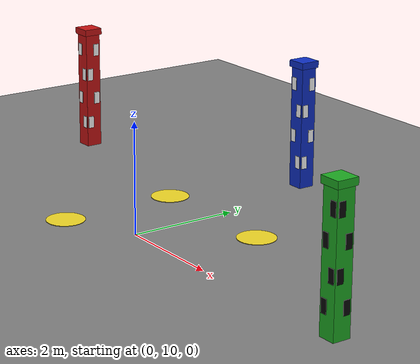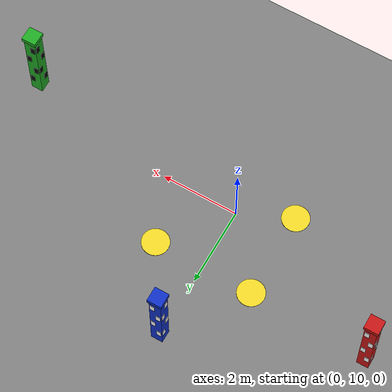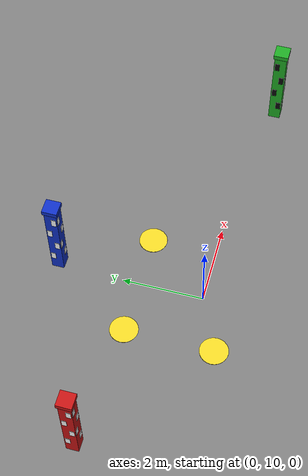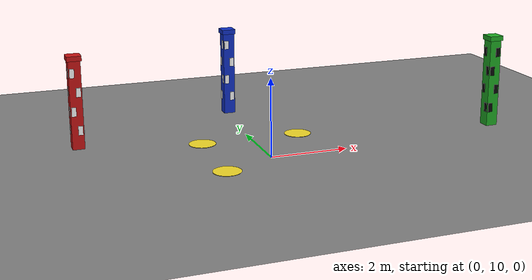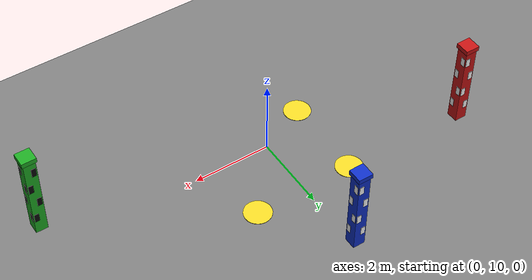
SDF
<sdf version="1.9">
 <world name="rmuc_2025_3m_vio_columns">
  <model name="ground_plane">
   <static>true</static>
   <link name="link">
    <collision name="collision">
     <geometry><plane><normal>0 0 1</normal><size>1 1</size></plane></geometry>
    </collision>
    <visual name="visual">
     <geometry><plane><normal>0 0 1</normal><size>100 100</size></plane></geometry>
     <material>
      <ambient>0.5 0.5 0.5 1</ambient>
      <diffuse>0.5 0.5 0.5 1</diffuse>
      <specular>0.5 0.5 0.5 1</specular>
     </material>
    </visual>
   </link>
  </model>
  <model name="pad_2">
   <static>true</static>
   <pose>-1.3 9.4 0.012 0 0 0</pose>
   <link name="link">
    <visual name="visual">
     <geometry><cylinder><radius>0.35</radius><length>0.01</length></cylinder></geometry>
     <material>
      <ambient>0.85 0.75 0.1 1</ambient>
      <diffuse>0.95 0.85 0.15 1</diffuse>
      <emissive>0.5 0.42 0.05 1</emissive>
     </material>
    </visual>
   </link>
  </model>
  <model name="pad_3">
   <static>true</static>
   <pose>1.3 11.6 0.012 0 0 0</pose>
   <link name="link">
    <visual name="visual">
     <geometry><cylinder><radius>0.35</radius><length>0.01</length></cylinder></geometry>
     <material>
      <ambient>0.85 0.75 0.1 1</ambient>
      <diffuse>0.95 0.85 0.15 1</diffuse>
      <emissive>0.5 0.42 0.05 1</emissive>
     </material>
    </visual>
   </link>
  </model>
  <model name="pad_4">
   <static>true</static>
   <pose>-1.3 11.6 0.012 0 0 0</pose>
   <link name="link">
    <visual name="visual">
     <geometry><cylinder><radius>0.35</radius><length>0.01</length></cylinder></geometry>
     <material>
      <ambient>0.85 0.75 0.1 1</ambient>
      <diffuse>0.95 0.85 0.15 1</diffuse>
      <emissive>0.5 0.42 0.05 1</emissive>
     </material>
    </visual>
   </link>
  </model>
  <model name="vio_column_red">
   <static>true</static>
   <pose>-4.40 11.80 0.20 0 0 0</pose>
   <link name="column">
    <collision name="collision">
     <pose>0 0 1.17 0 0 0</pose>
     <geometry><box><size>0.36 0.36 2.34</size></box></geometry>
    </collision>
    <visual name="body">
     <pose>0 0 1.15 0 0 0</pose>
     <geometry><box><size>0.30 0.30 2.30</size></box></geometry>
     <material>
      <ambient>0.780 0.080 0.080 1</ambient>
      <diffuse>0.780 0.080 0.080 1</diffuse>
      <specular>0.05 0.05 0.05 1</specular>
     </material>
    </visual>
    <visual name="cap">
     <pose>0 0 2.28 0 0 0</pose>
     <geometry><box><size>0.36 0.36 0.12</size></box></geometry>
     <material>
      <ambient>0.780 0.080 0.080 1</ambient>
      <diffuse>0.780 0.080 0.080 1</diffuse>
      <specular>0.05 0.05 0.05 1</specular>
     </material>
    </visual>
    <visual name="tile_f0_r0_c0">
     <pose>0.154 -0.068 0.48 0 0 0</pose>
     <geometry><box><size>0.008 0.115 0.23</size></box></geometry>
     <material>
      <ambient>0.980 0.980 0.980 1</ambient>
      <diffuse>0.980 0.980 0.980 1</diffuse>
      <specular>0.05 0.05 0.05 1</specular>
     </material>
    </visual>
    <visual name="tile_f0_r1_c1">
     <pose>0.154 0.068 0.96 0 0 0</pose>
     <geometry><box><size>0.008 0.115 0.23</size></box></geometry>
     <material>
      <ambient>0.980 0.980 0.980 1</ambient>
      <diffuse>0.980 0.980 0.980 1</diffuse>
      <specular>0.05 0.05 0.05 1</specular>
     </material>
    </visual>
    <visual name="tile_f0_r2_c0">
     <pose>0.154 -0.068 1.44 0 0 0</pose>
     <geometry><box><size>0.008 0.115 0.23</size></box></geometry>
     <material>
      <ambient>0.980 0.980 0.980 1</ambient>
      <diffuse>0.980 0.980 0.980 1</diffuse>
      <specular>0.05 0.05 0.05 1</specular>
     </material>
    </visual>
    <visual name="tile_f0_r3_c1">
     <pose>0.154 0.068 1.92 0 0 0</pose>
     <geometry><box><size>0.008 0.115 0.23</size></box></geometry>
     <material>
      <ambient>0.980 0.980 0.980 1</ambient>
      <diffuse>0.980 0.980 0.980 1</diffuse>
      <specular>0.05 0.05 0.05 1</specular>
     </material>
    </visual>
    <visual name="tile_f1_r0_c1">
     <pose>-0.154 0.068 0.48 0 0 0</pose>
     <geometry><box><size>0.008 0.115 0.23</size></box></geometry>
     <material>
      <ambient>0.980 0.980 0.980 1</ambient>
      <diffuse>0.980 0.980 0.980 1</diffuse>
      <specular>0.05 0.05 0.05 1</specular>
     </material>
    </visual>
    <visual name="tile_f1_r1_c0">
     <pose>-0.154 -0.068 0.96 0 0 0</pose>
     <geometry><box><size>0.008 0.115 0.23</size></box></geometry>
     <material>
      <ambient>0.980 0.980 0.980 1</ambient>
      <diffuse>0.980 0.980 0.980 1</diffuse>
      <specular>0.05 0.05 0.05 1</specular>
     </material>
    </visual>
    <visual name="tile_f1_r2_c1">
     <pose>-0.154 0.068 1.44 0 0 0</pose>
     <geometry><box><size>0.008 0.115 0.23</size></box></geometry>
     <material>
      <ambient>0.980 0.980 0.980 1</ambient>
      <diffuse>0.980 0.980 0.980 1</diffuse>
      <specular>0.05 0.05 0.05 1</specular>
     </material>
    </visual>
    <visual name="tile_f1_r3_c0">
     <pose>-0.154 -0.068 1.92 0 0 0</pose>
     <geometry><box><size>0.008 0.115 0.23</size></box></geometry>
     <material>
      <ambient>0.980 0.980 0.980 1</ambient>
      <diffuse>0.980 0.980 0.980 1</diffuse>
      <specular>0.05 0.05 0.05 1</specular>
     </material>
    </visual>
    <visual name="tile_f2_r0_c0">
     <pose>-0.068 0.154 0.48 0 0 0</pose>
     <geometry><box><size>0.115 0.008 0.23</size></box></geometry>
     <material>
      <ambient>0.980 0.980 0.980 1</ambient>
      <diffuse>0.980 0.980 0.980 1</diffuse>
      <specular>0.05 0.05 0.05 1</specular>
     </material>
    </visual>
    <visual name="tile_f2_r1_c1">
     <pose>0.068 0.154 0.96 0 0 0</pose>
     <geometry><box><size>0.115 0.008 0.23</size></box></geometry>
     <material>
      <ambient>0.980 0.980 0.980 1</ambient>
      <diffuse>0.980 0.980 0.980 1</diffuse>
      <specular>0.05 0.05 0.05 1</specular>
     </material>
    </visual>
    <visual name="tile_f2_r2_c0">
     <pose>-0.068 0.154 1.44 0 0 0</pose>
     <geometry><box><size>0.115 0.008 0.23</size></box></geometry>
     <material>
      <ambient>0.980 0.980 0.980 1</ambient>
      <diffuse>0.980 0.980 0.980 1</diffuse>
      <specular>0.05 0.05 0.05 1</specular>
     </material>
    </visual>
    <visual name="tile_f2_r3_c1">
     <pose>0.068 0.154 1.92 0 0 0</pose>
     <geometry><box><size>0.115 0.008 0.23</size></box></geometry>
     <material>
      <ambient>0.980 0.980 0.980 1</ambient>
      <diffuse>0.980 0.980 0.980 1</diffuse>
      <specular>0.05 0.05 0.05 1</specular>
     </material>
    </visual>
    <visual name="tile_f3_r0_c1">
     <pose>0.068 -0.154 0.48 0 0 0</pose>
     <geometry><box><size>0.115 0.008 0.23</size></box></geometry>
     <material>
      <ambient>0.980 0.980 0.980 1</ambient>
      <diffuse>0.980 0.980 0.980 1</diffuse>
      <specular>0.05 0.05 0.05 1</specular>
     </material>
    </visual>
    <visual name="tile_f3_r1_c0">
     <pose>-0.068 -0.154 0.96 0 0 0</pose>
     <geometry><box><size>0.115 0.008 0.23</size></box></geometry>
     <material>
      <ambient>0.980 0.980 0.980 1</ambient>
      <diffuse>0.980 0.980 0.980 1</diffuse>
      <specular>0.05 0.05 0.05 1</specular>
     </material>
    </visual>
    <visual name="tile_f3_r2_c1">
     <pose>0.068 -0.154 1.44 0 0 0</pose>
     <geometry><box><size>0.115 0.008 0.23</size></box></geometry>
     <material>
      <ambient>0.980 0.980 0.980 1</ambient>
      <diffuse>0.980 0.980 0.980 1</diffuse>
      <specular>0.05 0.05 0.05 1</specular>
     </material>
    </visual>
    <visual name="tile_f3_r3_c0">
     <pose>-0.068 -0.154 1.92 0 0 0</pose>
     <geometry><box><size>0.115 0.008 0.23</size></box></geometry>
     <material>
      <ambient>0.980 0.980 0.980 1</ambient>
      <diffuse>0.980 0.980 0.980 1</diffuse>
      <specular>0.05 0.05 0.05 1</specular>
     </material>
    </visual>
   </link>
  </model>
  <model name="vio_column_blue">
   <static>true</static>
   <pose>0.00 13.60 0.20 0 0 0</pose>
   <link name="column">
    <collision name="collision">
     <pose>0 0 1.17 0 0 0</pose>
     <geometry><box><size>0.36 0.36 2.34</size></box></geometry>
    </collision>
    <visual name="body">
     <pose>0 0 1.15 0 0 0</pose>
     <geometry><box><size>0.30 0.30 2.30</size></box></geometry>
     <material>
      <ambient>0.060 0.190 0.780 1</ambient>
      <diffuse>0.060 0.190 0.780 1</diffuse>
      <specular>0.05 0.05 0.05 1</specular>
     </material>
    </visual>
    <visual name="cap">
     <pose>0 0 2.28 0 0 0</pose>
     <geometry><box><size>0.36 0.36 0.12</size></box></geometry>
     <material>
      <ambient>0.060 0.190 0.780 1</ambient>
      <diffuse>0.060 0.190 0.780 1</diffuse>
      <specular>0.05 0.05 0.05 1</specular>
     </material>
    </visual>
    <visual name="tile_f0_r0_c0">
     <pose>0.154 -0.068 0.48 0 0 0</pose>
     <geometry><box><size>0.008 0.115 0.23</size></box></geometry>
     <material>
      <ambient>0.980 0.980 0.980 1</ambient>
      <diffuse>0.980 0.980 0.980 1</diffuse>
      <specular>0.05 0.05 0.05 1</specular>
     </material>
    </visual>
    <visual name="tile_f0_r1_c1">
     <pose>0.154 0.068 0.96 0 0 0</pose>
     <geometry><box><size>0.008 0.115 0.23</size></box></geometry>
     <material>
      <ambient>0.980 0.980 0.980 1</ambient>
      <diffuse>0.980 0.980 0.980 1</diffuse>
      <specular>0.05 0.05 0.05 1</specular>
     </material>
    </visual>
    <visual name="tile_f0_r2_c0">
     <pose>0.154 -0.068 1.44 0 0 0</pose>
     <geometry><box><size>0.008 0.115 0.23</size></box></geometry>
     <material>
      <ambient>0.980 0.980 0.980 1</ambient>
      <diffuse>0.980 0.980 0.980 1</diffuse>
      <specular>0.05 0.05 0.05 1</specular>
     </material>
    </visual>
    <visual name="tile_f0_r3_c1">
     <pose>0.154 0.068 1.92 0 0 0</pose>
     <geometry><box><size>0.008 0.115 0.23</size></box></geometry>
     <material>
      <ambient>0.980 0.980 0.980 1</ambient>
      <diffuse>0.980 0.980 0.980 1</diffuse>
      <specular>0.05 0.05 0.05 1</specular>
     </material>
    </visual>
    <visual name="tile_f1_r0_c1">
     <pose>-0.154 0.068 0.48 0 0 0</pose>
     <geometry><box><size>0.008 0.115 0.23</size></box></geometry>
     <material>
      <ambient>0.980 0.980 0.980 1</ambient>
      <diffuse>0.980 0.980 0.980 1</diffuse>
      <specular>0.05 0.05 0.05 1</specular>
     </material>
    </visual>
    <visual name="tile_f1_r1_c0">
     <pose>-0.154 -0.068 0.96 0 0 0</pose>
     <geometry><box><size>0.008 0.115 0.23</size></box></geometry>
     <material>
      <ambient>0.980 0.980 0.980 1</ambient>
      <diffuse>0.980 0.980 0.980 1</diffuse>
      <specular>0.05 0.05 0.05 1</specular>
     </material>
    </visual>
    <visual name="tile_f1_r2_c1">
     <pose>-0.154 0.068 1.44 0 0 0</pose>
     <geometry><box><size>0.008 0.115 0.23</size></box></geometry>
     <material>
      <ambient>0.980 0.980 0.980 1</ambient>
      <diffuse>0.980 0.980 0.980 1</diffuse>
      <specular>0.05 0.05 0.05 1</specular>
     </material>
    </visual>
    <visual name="tile_f1_r3_c0">
     <pose>-0.154 -0.068 1.92 0 0 0</pose>
     <geometry><box><size>0.008 0.115 0.23</size></box></geometry>
     <material>
      <ambient>0.980 0.980 0.980 1</ambient>
      <diffuse>0.980 0.980 0.980 1</diffuse>
      <specular>0.05 0.05 0.05 1</specular>
     </material>
    </visual>
    <visual name="tile_f2_r0_c0">
     <pose>-0.068 0.154 0.48 0 0 0</pose>
     <geometry><box><size>0.115 0.008 0.23</size></box></geometry>
     <material>
      <ambient>0.980 0.980 0.980 1</ambient>
      <diffuse>0.980 0.980 0.980 1</diffuse>
      <specular>0.05 0.05 0.05 1</specular>
     </material>
    </visual>
    <visual name="tile_f2_r1_c1">
     <pose>0.068 0.154 0.96 0 0 0</pose>
     <geometry><box><size>0.115 0.008 0.23</size></box></geometry>
     <material>
      <ambient>0.980 0.980 0.980 1</ambient>
      <diffuse>0.980 0.980 0.980 1</diffuse>
      <specular>0.05 0.05 0.05 1</specular>
     </material>
    </visual>
    <visual name="tile_f2_r2_c0">
     <pose>-0.068 0.154 1.44 0 0 0</pose>
     <geometry><box><size>0.115 0.008 0.23</size></box></geometry>
     <material>
      <ambient>0.980 0.980 0.980 1</ambient>
      <diffuse>0.980 0.980 0.980 1</diffuse>
      <specular>0.05 0.05 0.05 1</specular>
     </material>
    </visual>
    <visual name="tile_f2_r3_c1">
     <pose>0.068 0.154 1.92 0 0 0</pose>
     <geometry><box><size>0.115 0.008 0.23</size></box></geometry>
     <material>
      <ambient>0.980 0.980 0.980 1</ambient>
      <diffuse>0.980 0.980 0.980 1</diffuse>
      <specular>0.05 0.05 0.05 1</specular>
     </material>
    </visual>
    <visual name="tile_f3_r0_c1">
     <pose>0.068 -0.154 0.48 0 0 0</pose>
     <geometry><box><size>0.115 0.008 0.23</size></box></geometry>
     <material>
      <ambient>0.980 0.980 0.980 1</ambient>
      <diffuse>0.980 0.980 0.980 1</diffuse>
      <specular>0.05 0.05 0.05 1</specular>
     </material>
    </visual>
    <visual name="tile_f3_r1_c0">
     <pose>-0.068 -0.154 0.96 0 0 0</pose>
     <geometry><box><size>0.115 0.008 0.23</size></box></geometry>
     <material>
      <ambient>0.980 0.980 0.980 1</ambient>
      <diffuse>0.980 0.980 0.980 1</diffuse>
      <specular>0.05 0.05 0.05 1</specular>
     </material>
    </visual>
    <visual name="tile_f3_r2_c1">
     <pose>0.068 -0.154 1.44 0 0 0</pose>
     <geometry><box><size>0.115 0.008 0.23</size></box></geometry>
     <material>
      <ambient>0.980 0.980 0.980 1</ambient>
      <diffuse>0.980 0.980 0.980 1</diffuse>
      <specular>0.05 0.05 0.05 1</specular>
     </material>
    </visual>
    <visual name="tile_f3_r3_c0">
     <pose>-0.068 -0.154 1.92 0 0 0</pose>
     <geometry><box><size>0.115 0.008 0.23</size></box></geometry>
     <material>
      <ambient>0.980 0.980 0.980 1</ambient>
      <diffuse>0.980 0.980 0.980 1</diffuse>
      <specular>0.05 0.05 0.05 1</specular>
     </material>
    </visual>
   </link>
  </model>
  <model name="vio_column_green">
   <static>true</static>
   <pose>5.80 9.50 0.40 0 0 0</pose>
   <link name="column">
    <collision name="collision">
     <pose>0 0 1.17 0 0 0</pose>
     <geometry><box><size>0.36 0.36 2.34</size></box></geometry>
    </collision>
    <visual name="body">
     <pose>0 0 1.15 0 0 0</pose>
     <geometry><box><size>0.30 0.30 2.30</size></box></geometry>
     <material>
      <ambient>0.120 0.670 0.140 1</ambient>
      <diffuse>0.120 0.670 0.140 1</diffuse>
      <specular>0.05 0.05 0.05 1</specular>
     </material>
    </visual>
    <visual name="cap">
     <pose>0 0 2.28 0 0 0</pose>
     <geometry><box><size>0.36 0.36 0.12</size></box></geometry>
     <material>
      <ambient>0.120 0.670 0.140 1</ambient>
      <diffuse>0.120 0.670 0.140 1</diffuse>
      <specular>0.05 0.05 0.05 1</specular>
     </material>
    </visual>
    <visual name="tile_f0_r0_c1">
     <pose>0.154 0.068 0.48 0 0 0</pose>
     <geometry><box><size>0.008 0.115 0.23</size></box></geometry>
     <material>
      <ambient>0.030 0.030 0.030 1</ambient>
      <diffuse>0.030 0.030 0.030 1</diffuse>
      <specular>0.05 0.05 0.05 1</specular>
     </material>
    </visual>
    <visual name="tile_f0_r1_c0">
     <pose>0.154 -0.068 0.96 0 0 0</pose>
     <geometry><box><size>0.008 0.115 0.23</size></box></geometry>
     <material>
      <ambient>0.030 0.030 0.030 1</ambient>
      <diffuse>0.030 0.030 0.030 1</diffuse>
      <specular>0.05 0.05 0.05 1</specular>
     </material>
    </visual>
    <visual name="tile_f0_r2_c1">
     <pose>0.154 0.068 1.44 0 0 0</pose>
     <geometry><box><size>0.008 0.115 0.23</size></box></geometry>
     <material>
      <ambient>0.030 0.030 0.030 1</ambient>
      <diffuse>0.030 0.030 0.030 1</diffuse>
      <specular>0.05 0.05 0.05 1</specular>
     </material>
    </visual>
    <visual name="tile_f0_r3_c0">
     <pose>0.154 -0.068 1.92 0 0 0</pose>
     <geometry><box><size>0.008 0.115 0.23</size></box></geometry>
     <material>
      <ambient>0.030 0.030 0.030 1</ambient>
      <diffuse>0.030 0.030 0.030 1</diffuse>
      <specular>0.05 0.05 0.05 1</specular>
     </material>
    </visual>
    <visual name="tile_f1_r0_c0">
     <pose>-0.154 -0.068 0.48 0 0 0</pose>
     <geometry><box><size>0.008 0.115 0.23</size></box></geometry>
     <material>
      <ambient>0.030 0.030 0.030 1</ambient>
      <diffuse>0.030 0.030 0.030 1</diffuse>
      <specular>0.05 0.05 0.05 1</specular>
     </material>
    </visual>
    <visual name="tile_f1_r1_c1">
     <pose>-0.154 0.068 0.96 0 0 0</pose>
     <geometry><box><size>0.008 0.115 0.23</size></box></geometry>
     <material>
      <ambient>0.030 0.030 0.030 1</ambient>
      <diffuse>0.030 0.030 0.030 1</diffuse>
      <specular>0.05 0.05 0.05 1</specular>
     </material>
    </visual>
    <visual name="tile_f1_r2_c0">
     <pose>-0.154 -0.068 1.44 0 0 0</pose>
     <geometry><box><size>0.008 0.115 0.23</size></box></geometry>
     <material>
      <ambient>0.030 0.030 0.030 1</ambient>
      <diffuse>0.030 0.030 0.030 1</diffuse>
      <specular>0.05 0.05 0.05 1</specular>
     </material>
    </visual>
    <visual name="tile_f1_r3_c1">
     <pose>-0.154 0.068 1.92 0 0 0</pose>
     <geometry><box><size>0.008 0.115 0.23</size></box></geometry>
     <material>
      <ambient>0.030 0.030 0.030 1</ambient>
      <diffuse>0.030 0.030 0.030 1</diffuse>
      <specular>0.05 0.05 0.05 1</specular>
     </material>
    </visual>
    <visual name="tile_f2_r0_c1">
     <pose>0.068 0.154 0.48 0 0 0</pose>
     <geometry><box><size>0.115 0.008 0.23</size></box></geometry>
     <material>
      <ambient>0.030 0.030 0.030 1</ambient>
      <diffuse>0.030 0.030 0.030 1</diffuse>
      <specular>0.05 0.05 0.05 1</specular>
     </material>
    </visual>
    <visual name="tile_f2_r1_c0">
     <pose>-0.068 0.154 0.96 0 0 0</pose>
     <geometry><box><size>0.115 0.008 0.23</size></box></geometry>
     <material>
      <ambient>0.030 0.030 0.030 1</ambient>
      <diffuse>0.030 0.030 0.030 1</diffuse>
      <specular>0.05 0.05 0.05 1</specular>
     </material>
    </visual>
    <visual name="tile_f2_r2_c1">
     <pose>0.068 0.154 1.44 0 0 0</pose>
     <geometry><box><size>0.115 0.008 0.23</size></box></geometry>
     <material>
      <ambient>0.030 0.030 0.030 1</ambient>
      <diffuse>0.030 0.030 0.030 1</diffuse>
      <specular>0.05 0.05 0.05 1</specular>
     </material>
    </visual>
    <visual name="tile_f2_r3_c0">
     <pose>-0.068 0.154 1.92 0 0 0</pose>
     <geometry><box><size>0.115 0.008 0.23</size></box></geometry>
     <material>
      <ambient>0.030 0.030 0.030 1</ambient>
      <diffuse>0.030 0.030 0.030 1</diffuse>
      <specular>0.05 0.05 0.05 1</specular>
     </material>
    </visual>
    <visual name="tile_f3_r0_c0">
     <pose>-0.068 -0.154 0.48 0 0 0</pose>
     <geometry><box><size>0.115 0.008 0.23</size></box></geometry>
     <material>
      <ambient>0.030 0.030 0.030 1</ambient>
      <diffuse>0.030 0.030 0.030 1</diffuse>
      <specular>0.05 0.05 0.05 1</specular>
     </material>
    </visual>
    <visual name="tile_f3_r1_c1">
     <pose>0.068 -0.154 0.96 0 0 0</pose>
     <geometry><box><size>0.115 0.008 0.23</size></box></geometry>
     <material>
      <ambient>0.030 0.030 0.030 1</ambient>
      <diffuse>0.030 0.030 0.030 1</diffuse>
      <specular>0.05 0.05 0.05 1</specular>
     </material>
    </visual>
    <visual name="tile_f3_r2_c0">
     <pose>-0.068 -0.154 1.44 0 0 0</pose>
     <geometry><box><size>0.115 0.008 0.23</size></box></geometry>
     <material>
      <ambient>0.030 0.030 0.030 1</ambient>
      <diffuse>0.030 0.030 0.030 1</diffuse>
      <specular>0.05 0.05 0.05 1</specular>
     </material>
    </visual>
    <visual name="tile_f3_r3_c1">
     <pose>0.068 -0.154 1.92 0 0 0</pose>
     <geometry><box><size>0.115 0.008 0.23</size></box></geometry>
     <material>
      <ambient>0.030 0.030 0.030 1</ambient>
      <diffuse>0.030 0.030 0.030 1</diffuse>
      <specular>0.05 0.05 0.05 1</specular>
     </material>
    </visual>
   </link>
  </model>
 </world>
</sdf>
